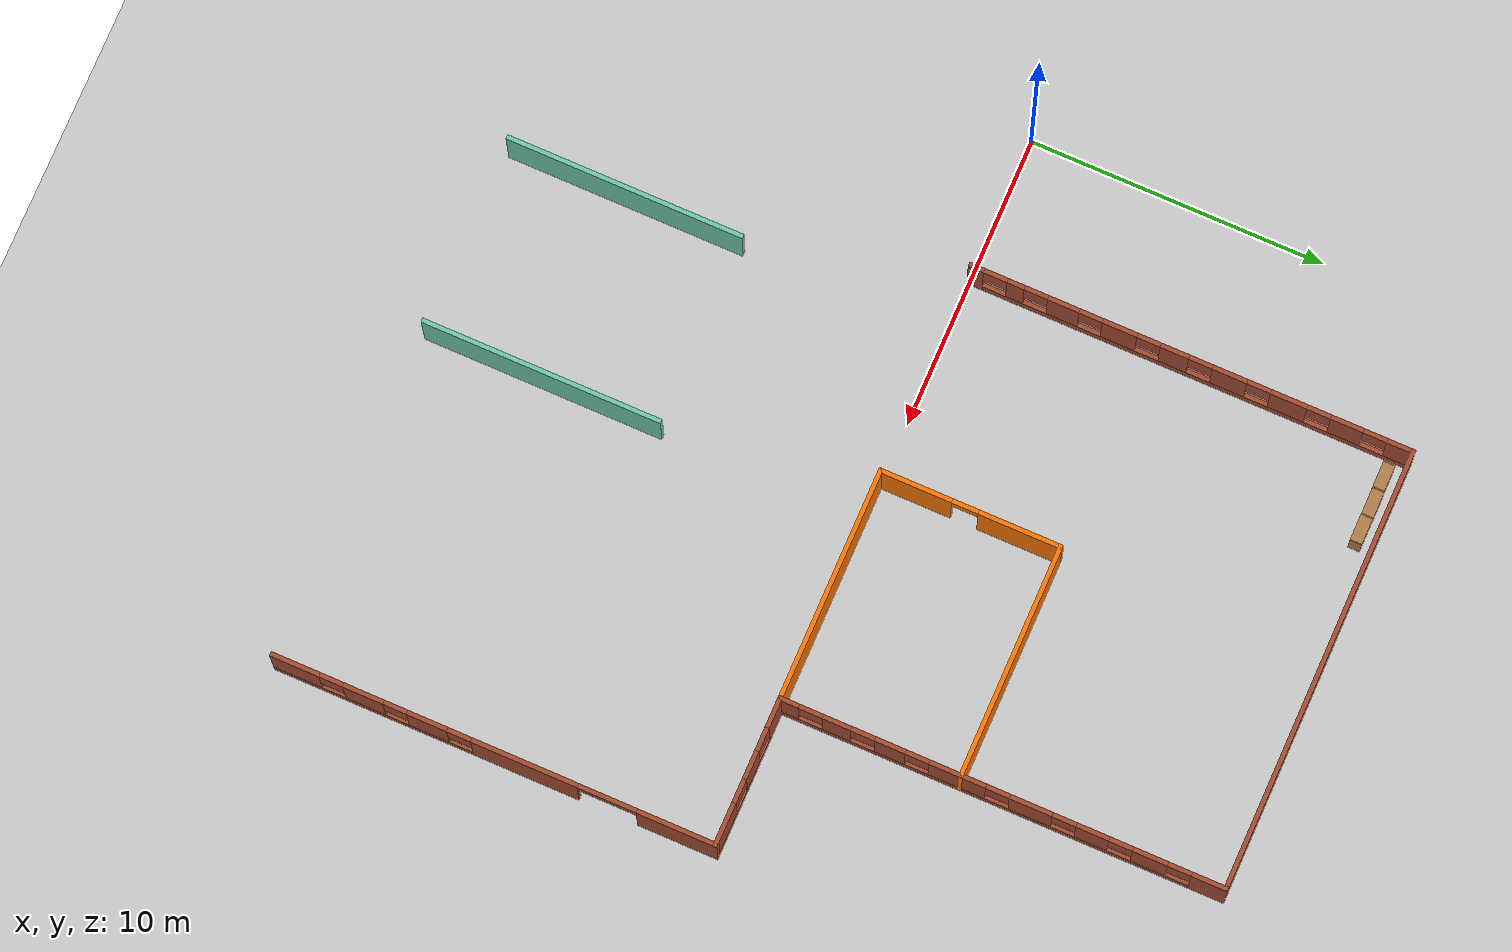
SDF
<sdf version="1.7">
 <world name="default">
  <model name="ground_plane">
   <static>1</static>
   <link name="link">
    <collision name="collision">
     <geometry><plane><normal>0 0 1</normal><size>100 100</size></plane></geometry>
     <surface><friction><ode><mu>100</mu><mu2>50</mu2></ode></friction></surface>
    </collision>
    <visual name="visual">
     <cast_shadows>0</cast_shadows>
     <geometry><plane><normal>0 0 1</normal><size>100 100</size></plane></geometry>
     <material>
      <script><uri>file://media/materials/scripts/gazebo.material</uri><name>Gazebo/Grey</name></script>
     </material>
    </visual>
   </link>
  </model>
  <model name="office">
   <link name="Wall_16">
    <pose>5 7.5 0 0 -0 1.5708</pose>
    <visual name="Wall_16_Visual_0">
     <pose>-7.31594 0 1.25 0 -0 0</pose>
     <geometry><box><size>0.518129 0.15 2.5</size></box></geometry>
     <material>
      <script><uri>file://media/materials/scripts/gazebo.material</uri><name>Gazebo/Bricks</name></script>
      <ambient>1 1 1 1</ambient>
     </material>
     <meta><layer>0</layer></meta>
    </visual>
    <collision name="Wall_16_Collision_0">
     <geometry><box><size>0.518129 0.15 2.5</size></box></geometry>
     <pose>-7.31594 0 1.25 0 -0 0</pose>
    </collision>
    <visual name="Wall_16_Visual_1">
     <pose>0.259064 0 0.25 0 -0 0</pose>
     <geometry><box><size>14.6319 0.15 0.5</size></box></geometry>
     <material>
      <script><uri>file://media/materials/scripts/gazebo.material</uri><name>Gazebo/Bricks</name></script>
      <ambient>1 1 1 1</ambient>
     </material>
     <meta><layer>0</layer></meta>
    </visual>
    <collision name="Wall_16_Collision_1">
     <geometry><box><size>14.6319 0.15 0.5</size></box></geometry>
     <pose>0.259064 0 0.25 0 -0 0</pose>
    </collision>
    <visual name="Wall_16_Visual_2">
     <pose>-5.96546 0 1.5 0 -0 0</pose>
     <geometry><box><size>0.582822 0.15 2</size></box></geometry>
     <material>
      <script><uri>file://media/materials/scripts/gazebo.material</uri><name>Gazebo/Bricks</name></script>
      <ambient>1 1 1 1</ambient>
     </material>
     <meta><layer>0</layer></meta>
    </visual>
    <collision name="Wall_16_Collision_2">
     <geometry><box><size>0.582822 0.15 2</size></box></geometry>
     <pose>-5.96546 0 1.5 0 -0 0</pose>
    </collision>
    <visual name="Wall_16_Visual_3">
     <pose>-4.34021 0 1.5 0 -0 0</pose>
     <geometry><box><size>1.06767 0.15 2</size></box></geometry>
     <material>
      <script><uri>file://media/materials/scripts/gazebo.material</uri><name>Gazebo/Bricks</name></script>
      <ambient>1 1 1 1</ambient>
     </material>
     <meta><layer>0</layer></meta>
    </visual>
    <collision name="Wall_16_Collision_3">
     <geometry><box><size>1.06767 0.15 2</size></box></geometry>
     <pose>-4.34021 0 1.5 0 -0 0</pose>
    </collision>
    <visual name="Wall_16_Visual_4">
     <pose>-2.42273 0 1.5 0 -0 0</pose>
     <geometry><box><size>1.16729 0.15 2</size></box></geometry>
     <material>
      <script><uri>file://media/materials/scripts/gazebo.material</uri><name>Gazebo/Bricks</name></script>
      <ambient>1 1 1 1</ambient>
     </material>
     <meta><layer>0</layer></meta>
    </visual>
    <collision name="Wall_16_Collision_4">
     <geometry><box><size>1.16729 0.15 2</size></box></geometry>
     <pose>-2.42273 0 1.5 0 -0 0</pose>
    </collision>
    <visual name="Wall_16_Visual_5">
     <pose>-0.557195 0 1.5 0 -0 0</pose>
     <geometry><box><size>0.963782 0.15 2</size></box></geometry>
     <material>
      <script><uri>file://media/materials/scripts/gazebo.material</uri><name>Gazebo/Bricks</name></script>
      <ambient>1 1 1 1</ambient>
     </material>
     <meta><layer>0</layer></meta>
    </visual>
    <collision name="Wall_16_Collision_5">
     <geometry><box><size>0.963782 0.15 2</size></box></geometry>
     <pose>-0.557195 0 1.5 0 -0 0</pose>
    </collision>
    <visual name="Wall_16_Visual_6">
     <pose>1.30834 0 1.5 0 -0 0</pose>
     <geometry><box><size>1.16729 0.15 2</size></box></geometry>
     <material>
      <script><uri>file://media/materials/scripts/gazebo.material</uri><name>Gazebo/Bricks</name></script>
      <ambient>1 1 1 1</ambient>
     </material>
     <meta><layer>0</layer></meta>
    </visual>
    <collision name="Wall_16_Collision_6">
     <geometry><box><size>1.16729 0.15 2</size></box></geometry>
     <pose>1.30834 0 1.5 0 -0 0</pose>
    </collision>
    <visual name="Wall_16_Visual_7">
     <pose>3.30956 0 1.5 0 -0 0</pose>
     <geometry><box><size>1.23513 0.15 2</size></box></geometry>
     <material>
      <script><uri>file://media/materials/scripts/gazebo.material</uri><name>Gazebo/Bricks</name></script>
      <ambient>1 1 1 1</ambient>
     </material>
     <meta><layer>0</layer></meta>
    </visual>
    <collision name="Wall_16_Collision_7">
     <geometry><box><size>1.23513 0.15 2</size></box></geometry>
     <pose>3.30956 0 1.5 0 -0 0</pose>
    </collision>
    <visual name="Wall_16_Visual_8">
     <pose>5.27685 0 1.5 0 -0 0</pose>
     <geometry><box><size>1.09946 0.15 2</size></box></geometry>
     <material>
      <script><uri>file://media/materials/scripts/gazebo.material</uri><name>Gazebo/Bricks</name></script>
      <ambient>1 1 1 1</ambient>
     </material>
     <meta><layer>0</layer></meta>
    </visual>
    <collision name="Wall_16_Collision_8">
     <geometry><box><size>1.09946 0.15 2</size></box></geometry>
     <pose>5.27685 0 1.5 0 -0 0</pose>
    </collision>
    <visual name="Wall_16_Visual_9">
     <pose>7.10079 0 1.5 0 -0 0</pose>
     <geometry><box><size>0.948419 0.15 2</size></box></geometry>
     <material>
      <script><uri>file://media/materials/scripts/gazebo.material</uri><name>Gazebo/Bricks</name></script>
      <ambient>1 1 1 1</ambient>
     </material>
     <meta><layer>0</layer></meta>
    </visual>
    <collision name="Wall_16_Collision_9">
     <geometry><box><size>0.948419 0.15 2</size></box></geometry>
     <pose>7.10079 0 1.5 0 -0 0</pose>
    </collision>
    <visual name="Wall_16_Visual_10">
     <pose>-6.65687 0 1.9 0 -0 0</pose>
     <geometry><box><size>0.8 0.15 1.2</size></box></geometry>
     <material>
      <script><uri>file://media/materials/scripts/gazebo.material</uri><name>Gazebo/Bricks</name></script>
      <ambient>1 1 1 1</ambient>
     </material>
     <meta><layer>0</layer></meta>
    </visual>
    <collision name="Wall_16_Collision_10">
     <geometry><box><size>0.8 0.15 1.2</size></box></geometry>
     <pose>-6.65687 0 1.9 0 -0 0</pose>
    </collision>
    <visual name="Wall_16_Visual_11">
     <pose>-5.27405 0 1.9 0 -0 0</pose>
     <geometry><box><size>0.8 0.15 1.2</size></box></geometry>
     <material>
      <script><uri>file://media/materials/scripts/gazebo.material</uri><name>Gazebo/Bricks</name></script>
      <ambient>1 1 1 1</ambient>
     </material>
     <meta><layer>0</layer></meta>
    </visual>
    <collision name="Wall_16_Collision_11">
     <geometry><box><size>0.8 0.15 1.2</size></box></geometry>
     <pose>-5.27405 0 1.9 0 -0 0</pose>
    </collision>
    <visual name="Wall_16_Visual_12">
     <pose>-3.40638 0 1.9 0 -0 0</pose>
     <geometry><box><size>0.8 0.15 1.2</size></box></geometry>
     <material>
      <script><uri>file://media/materials/scripts/gazebo.material</uri><name>Gazebo/Bricks</name></script>
      <ambient>1 1 1 1</ambient>
     </material>
     <meta><layer>0</layer></meta>
    </visual>
    <collision name="Wall_16_Collision_12">
     <geometry><box><size>0.8 0.15 1.2</size></box></geometry>
     <pose>-3.40638 0 1.9 0 -0 0</pose>
    </collision>
    <visual name="Wall_16_Visual_13">
     <pose>-1.43908 0 1.9 0 -0 0</pose>
     <geometry><box><size>0.8 0.15 1.2</size></box></geometry>
     <material>
      <script><uri>file://media/materials/scripts/gazebo.material</uri><name>Gazebo/Bricks</name></script>
      <ambient>1 1 1 1</ambient>
     </material>
     <meta><layer>0</layer></meta>
    </visual>
    <collision name="Wall_16_Collision_13">
     <geometry><box><size>0.8 0.15 1.2</size></box></geometry>
     <pose>-1.43908 0 1.9 0 -0 0</pose>
    </collision>
    <visual name="Wall_16_Visual_14">
     <pose>0.324696 0 1.9 0 -0 0</pose>
     <geometry><box><size>0.8 0.15 1.2</size></box></geometry>
     <material>
      <script><uri>file://media/materials/scripts/gazebo.material</uri><name>Gazebo/Bricks</name></script>
      <ambient>1 1 1 1</ambient>
     </material>
     <meta><layer>0</layer></meta>
    </visual>
    <collision name="Wall_16_Collision_14">
     <geometry><box><size>0.8 0.15 1.2</size></box></geometry>
     <pose>0.324696 0 1.9 0 -0 0</pose>
    </collision>
    <visual name="Wall_16_Visual_15">
     <pose>2.29199 0 1.9 0 -0 0</pose>
     <geometry><box><size>0.8 0.15 1.2</size></box></geometry>
     <material>
      <script><uri>file://media/materials/scripts/gazebo.material</uri><name>Gazebo/Bricks</name></script>
      <ambient>1 1 1 1</ambient>
     </material>
     <meta><layer>0</layer></meta>
    </visual>
    <collision name="Wall_16_Collision_15">
     <geometry><box><size>0.8 0.15 1.2</size></box></geometry>
     <pose>2.29199 0 1.9 0 -0 0</pose>
    </collision>
    <visual name="Wall_16_Visual_16">
     <pose>4.32712 0 1.9 0 -0 0</pose>
     <geometry><box><size>0.8 0.15 1.2</size></box></geometry>
     <material>
      <script><uri>file://media/materials/scripts/gazebo.material</uri><name>Gazebo/Bricks</name></script>
      <ambient>1 1 1 1</ambient>
     </material>
     <meta><layer>0</layer></meta>
    </visual>
    <collision name="Wall_16_Collision_16">
     <geometry><box><size>0.8 0.15 1.2</size></box></geometry>
     <pose>4.32712 0 1.9 0 -0 0</pose>
    </collision>
    <visual name="Wall_16_Visual_17">
     <pose>6.22658 0 1.9 0 -0 0</pose>
     <geometry><box><size>0.8 0.15 1.2</size></box></geometry>
     <material>
      <script><uri>file://media/materials/scripts/gazebo.material</uri><name>Gazebo/Bricks</name></script>
      <ambient>1 1 1 1</ambient>
     </material>
     <meta><layer>0</layer></meta>
    </visual>
    <collision name="Wall_16_Collision_17">
     <geometry><box><size>0.8 0.15 1.2</size></box></geometry>
     <pose>6.22658 0 1.9 0 -0 0</pose>
    </collision>
   </link>
   <link name="Wall_20">
    <collision name="Wall_20_Collision">
     <geometry><box><size>15.15 0.15 2.5</size></box></geometry>
     <pose>0 0 1.25 0 -0 0</pose>
    </collision>
    <visual name="Wall_20_Visual">
     <pose>0 0 1.25 0 -0 0</pose>
     <geometry><box><size>15.15 0.15 2.5</size></box></geometry>
     <material>
      <script><uri>file://media/materials/scripts/gazebo.material</uri><name>Gazebo/Bricks</name></script>
      <ambient>1 1 1 1</ambient>
     </material>
     <meta><layer>0</layer></meta>
    </visual>
    <pose>12.5 15 0 0 -0 0</pose>
   </link>
   <link name="Wall_22">
    <pose>20 7.5 0 0 -0 -1.5708</pose>
    <visual name="Wall_22_Visual_0">
     <pose>-6.96511 0 1.25 0 -0 0</pose>
     <geometry><box><size>1.21977 0.15 2.5</size></box></geometry>
     <material>
      <script><uri>file://media/materials/scripts/gazebo.material</uri><name>Gazebo/Bricks</name></script>
      <ambient>1 1 1 1</ambient>
     </material>
     <meta><layer>0</layer></meta>
    </visual>
    <collision name="Wall_22_Collision_0">
     <geometry><box><size>1.21977 0.15 2.5</size></box></geometry>
     <pose>-6.96511 0 1.25 0 -0 0</pose>
    </collision>
    <visual name="Wall_22_Visual_1">
     <pose>0.609885 0 0.25 0 -0 0</pose>
     <geometry><box><size>13.9302 0.15 0.5</size></box></geometry>
     <material>
      <script><uri>file://media/materials/scripts/gazebo.material</uri><name>Gazebo/Bricks</name></script>
      <ambient>1 1 1 1</ambient>
     </material>
     <meta><layer>0</layer></meta>
    </visual>
    <collision name="Wall_22_Collision_1">
     <geometry><box><size>13.9302 0.15 0.5</size></box></geometry>
     <pose>0.609885 0 0.25 0 -0 0</pose>
    </collision>
    <visual name="Wall_22_Visual_2">
     <pose>-4.97158 0 1.5 0 -0 0</pose>
     <geometry><box><size>1.16729 0.15 2</size></box></geometry>
     <material>
      <script><uri>file://media/materials/scripts/gazebo.material</uri><name>Gazebo/Bricks</name></script>
      <ambient>1 1 1 1</ambient>
     </material>
     <meta><layer>0</layer></meta>
    </visual>
    <collision name="Wall_22_Collision_2">
     <geometry><box><size>1.16729 0.15 2</size></box></geometry>
     <pose>-4.97158 0 1.5 0 -0 0</pose>
    </collision>
    <visual name="Wall_22_Visual_3">
     <pose>-3.03821 0 1.5 0 -0 0</pose>
     <geometry><box><size>1.09946 0.15 2</size></box></geometry>
     <material>
      <script><uri>file://media/materials/scripts/gazebo.material</uri><name>Gazebo/Bricks</name></script>
      <ambient>1 1 1 1</ambient>
     </material>
     <meta><layer>0</layer></meta>
    </visual>
    <collision name="Wall_22_Collision_3">
     <geometry><box><size>1.09946 0.15 2</size></box></geometry>
     <pose>-3.03821 0 1.5 0 -0 0</pose>
    </collision>
    <visual name="Wall_22_Visual_4">
     <pose>-0.969155 0 1.5 0 -0 0</pose>
     <geometry><box><size>1.43865 0.15 2</size></box></geometry>
     <material>
      <script><uri>file://media/materials/scripts/gazebo.material</uri><name>Gazebo/Bricks</name></script>
      <ambient>1 1 1 1</ambient>
     </material>
     <meta><layer>0</layer></meta>
    </visual>
    <collision name="Wall_22_Collision_4">
     <geometry><box><size>1.43865 0.15 2</size></box></geometry>
     <pose>-0.969155 0 1.5 0 -0 0</pose>
    </collision>
    <visual name="Wall_22_Visual_5">
     <pose>1.50692 0 1.5 0 -0 0</pose>
     <geometry><box><size>1.91351 0.15 2</size></box></geometry>
     <material>
      <script><uri>file://media/materials/scripts/gazebo.material</uri><name>Gazebo/Bricks</name></script>
      <ambient>1 1 1 1</ambient>
     </material>
     <meta><layer>0</layer></meta>
    </visual>
    <collision name="Wall_22_Collision_5">
     <geometry><box><size>1.91351 0.15 2</size></box></geometry>
     <pose>1.50692 0 1.5 0 -0 0</pose>
    </collision>
    <visual name="Wall_22_Visual_6">
     <pose>3.77949 0 1.5 0 -0 0</pose>
     <geometry><box><size>1.03162 0.15 2</size></box></geometry>
     <material>
      <script><uri>file://media/materials/scripts/gazebo.material</uri><name>Gazebo/Bricks</name></script>
      <ambient>1 1 1 1</ambient>
     </material>
     <meta><layer>0</layer></meta>
    </visual>
    <collision name="Wall_22_Collision_6">
     <geometry><box><size>1.03162 0.15 2</size></box></geometry>
     <pose>3.77949 0 1.5 0 -0 0</pose>
    </collision>
    <visual name="Wall_22_Visual_7">
     <pose>5.57719 0 1.5 0 -0 0</pose>
     <geometry><box><size>0.963782 0.15 2</size></box></geometry>
     <material>
      <script><uri>file://media/materials/scripts/gazebo.material</uri><name>Gazebo/Bricks</name></script>
      <ambient>1 1 1 1</ambient>
     </material>
     <meta><layer>0</layer></meta>
    </visual>
    <collision name="Wall_22_Collision_7">
     <geometry><box><size>0.963782 0.15 2</size></box></geometry>
     <pose>5.57719 0 1.5 0 -0 0</pose>
    </collision>
    <visual name="Wall_22_Visual_8">
     <pose>7.21704 0 1.5 0 -0 0</pose>
     <geometry><box><size>0.71592 0.15 2</size></box></geometry>
     <material>
      <script><uri>file://media/materials/scripts/gazebo.material</uri><name>Gazebo/Bricks</name></script>
      <ambient>1 1 1 1</ambient>
     </material>
     <meta><layer>0</layer></meta>
    </visual>
    <collision name="Wall_22_Collision_8">
     <geometry><box><size>0.71592 0.15 2</size></box></geometry>
     <pose>7.21704 0 1.5 0 -0 0</pose>
    </collision>
    <visual name="Wall_22_Visual_9">
     <pose>-5.95523 0 1.9 0 -0 0</pose>
     <geometry><box><size>0.8 0.15 1.2</size></box></geometry>
     <material>
      <script><uri>file://media/materials/scripts/gazebo.material</uri><name>Gazebo/Bricks</name></script>
      <ambient>1 1 1 1</ambient>
     </material>
     <meta><layer>0</layer></meta>
    </visual>
    <collision name="Wall_22_Collision_9">
     <geometry><box><size>0.8 0.15 1.2</size></box></geometry>
     <pose>-5.95523 0 1.9 0 -0 0</pose>
    </collision>
    <visual name="Wall_22_Visual_10">
     <pose>-3.98793 0 1.9 0 -0 0</pose>
     <geometry><box><size>0.8 0.15 1.2</size></box></geometry>
     <material>
      <script><uri>file://media/materials/scripts/gazebo.material</uri><name>Gazebo/Bricks</name></script>
      <ambient>1 1 1 1</ambient>
     </material>
     <meta><layer>0</layer></meta>
    </visual>
    <collision name="Wall_22_Collision_10">
     <geometry><box><size>0.8 0.15 1.2</size></box></geometry>
     <pose>-3.98793 0 1.9 0 -0 0</pose>
    </collision>
    <visual name="Wall_22_Visual_11">
     <pose>-2.08848 0 1.9 0 -0 0</pose>
     <geometry><box><size>0.8 0.15 1.2</size></box></geometry>
     <material>
      <script><uri>file://media/materials/scripts/gazebo.material</uri><name>Gazebo/Bricks</name></script>
      <ambient>1 1 1 1</ambient>
     </material>
     <meta><layer>0</layer></meta>
    </visual>
    <collision name="Wall_22_Collision_11">
     <geometry><box><size>0.8 0.15 1.2</size></box></geometry>
     <pose>-2.08848 0 1.9 0 -0 0</pose>
    </collision>
    <visual name="Wall_22_Visual_12">
     <pose>0.150168 0 1.9 0 -0 0</pose>
     <geometry><box><size>0.8 0.15 1.2</size></box></geometry>
     <material>
      <script><uri>file://media/materials/scripts/gazebo.material</uri><name>Gazebo/Bricks</name></script>
      <ambient>1 1 1 1</ambient>
     </material>
     <meta><layer>0</layer></meta>
    </visual>
    <collision name="Wall_22_Collision_12">
     <geometry><box><size>0.8 0.15 1.2</size></box></geometry>
     <pose>0.150168 0 1.9 0 -0 0</pose>
    </collision>
    <visual name="Wall_22_Visual_13">
     <pose>2.86368 0 1.9 0 -0 0</pose>
     <geometry><box><size>0.8 0.15 1.2</size></box></geometry>
     <material>
      <script><uri>file://media/materials/scripts/gazebo.material</uri><name>Gazebo/Bricks</name></script>
      <ambient>1 1 1 1</ambient>
     </material>
     <meta><layer>0</layer></meta>
    </visual>
    <collision name="Wall_22_Collision_13">
     <geometry><box><size>0.8 0.15 1.2</size></box></geometry>
     <pose>2.86368 0 1.9 0 -0 0</pose>
    </collision>
    <visual name="Wall_22_Visual_14">
     <pose>4.6953 0 1.9 0 -0 0</pose>
     <geometry><box><size>0.8 0.15 1.2</size></box></geometry>
     <material>
      <script><uri>file://media/materials/scripts/gazebo.material</uri><name>Gazebo/Bricks</name></script>
      <ambient>1 1 1 1</ambient>
     </material>
     <meta><layer>0</layer></meta>
    </visual>
    <collision name="Wall_22_Collision_14">
     <geometry><box><size>0.8 0.15 1.2</size></box></geometry>
     <pose>4.6953 0 1.9 0 -0 0</pose>
    </collision>
    <visual name="Wall_22_Visual_15">
     <pose>6.45908 0 1.9 0 -0 0</pose>
     <geometry><box><size>0.8 0.15 1.2</size></box></geometry>
     <material>
      <script><uri>file://media/materials/scripts/gazebo.material</uri><name>Gazebo/Bricks</name></script>
      <ambient>1 1 1 1</ambient>
     </material>
     <meta><layer>0</layer></meta>
    </visual>
    <collision name="Wall_22_Collision_15">
     <geometry><box><size>0.8 0.15 1.2</size></box></geometry>
     <pose>6.45908 0 1.9 0 -0 0</pose>
    </collision>
   </link>
   <link name="Wall_24">
    <pose>22.5 0 0 0 -0 0</pose>
    <visual name="Wall_24_Visual_0">
     <pose>-2.03488 0 1.25 0 -0 0</pose>
     <geometry><box><size>1.08023 0.15 2.5</size></box></geometry>
     <material>
      <script><uri>file://media/materials/scripts/gazebo.material</uri><name>Gazebo/Bricks</name></script>
      <ambient>1 1 1 1</ambient>
     </material>
     <meta><layer>0</layer></meta>
    </visual>
    <collision name="Wall_24_Collision_0">
     <geometry><box><size>1.08023 0.15 2.5</size></box></geometry>
     <pose>-2.03488 0 1.25 0 -0 0</pose>
    </collision>
    <visual name="Wall_24_Visual_1">
     <pose>0.540116 0 0.25 0 -0 0</pose>
     <geometry><box><size>4.06977 0.15 0.5</size></box></geometry>
     <material>
      <script><uri>file://media/materials/scripts/gazebo.material</uri><name>Gazebo/Bricks</name></script>
      <ambient>1 1 1 1</ambient>
     </material>
     <meta><layer>0</layer></meta>
    </visual>
    <collision name="Wall_24_Collision_1">
     <geometry><box><size>4.06977 0.15 0.5</size></box></geometry>
     <pose>0.540116 0 0.25 0 -0 0</pose>
    </collision>
    <visual name="Wall_24_Visual_2">
     <pose>-0.212877 0 1.5 0 -0 0</pose>
     <geometry><box><size>0.963783 0.15 2</size></box></geometry>
     <material>
      <script><uri>file://media/materials/scripts/gazebo.material</uri><name>Gazebo/Bricks</name></script>
      <ambient>1 1 1 1</ambient>
     </material>
     <meta><layer>0</layer></meta>
    </visual>
    <collision name="Wall_24_Collision_2">
     <geometry><box><size>0.963783 0.15 2</size></box></geometry>
     <pose>-0.212877 0 1.5 0 -0 0</pose>
    </collision>
    <visual name="Wall_24_Visual_3">
     <pose>1.82201 0 1.5 0 -0 0</pose>
     <geometry><box><size>1.50599 0.15 2</size></box></geometry>
     <material>
      <script><uri>file://media/materials/scripts/gazebo.material</uri><name>Gazebo/Bricks</name></script>
      <ambient>1 1 1 1</ambient>
     </material>
     <meta><layer>0</layer></meta>
    </visual>
    <collision name="Wall_24_Collision_3">
     <geometry><box><size>1.50599 0.15 2</size></box></geometry>
     <pose>1.82201 0 1.5 0 -0 0</pose>
    </collision>
    <visual name="Wall_24_Visual_4">
     <pose>-1.09477 0 1.9 0 -0 0</pose>
     <geometry><box><size>0.8 0.15 1.2</size></box></geometry>
     <material>
      <script><uri>file://media/materials/scripts/gazebo.material</uri><name>Gazebo/Bricks</name></script>
      <ambient>1 1 1 1</ambient>
     </material>
     <meta><layer>0</layer></meta>
    </visual>
    <collision name="Wall_24_Collision_4">
     <geometry><box><size>0.8 0.15 1.2</size></box></geometry>
     <pose>-1.09477 0 1.9 0 -0 0</pose>
    </collision>
    <visual name="Wall_24_Visual_5">
     <pose>0.669014 0 1.9 0 -0 0</pose>
     <geometry><box><size>0.8 0.15 1.2</size></box></geometry>
     <material>
      <script><uri>file://media/materials/scripts/gazebo.material</uri><name>Gazebo/Bricks</name></script>
      <ambient>1 1 1 1</ambient>
     </material>
     <meta><layer>0</layer></meta>
    </visual>
    <collision name="Wall_24_Collision_5">
     <geometry><box><size>0.8 0.15 1.2</size></box></geometry>
     <pose>0.669014 0 1.9 0 -0 0</pose>
    </collision>
   </link>
   <link name="Wall_26">
    <pose>25 -7.5 0 0 -0 -1.5708</pose>
    <visual name="Wall_26_Visual_0">
     <pose>-6.2111 0 1.25 0 -0 0</pose>
     <geometry><box><size>2.72781 0.15 2.5</size></box></geometry>
     <material>
      <script><uri>file://media/materials/scripts/gazebo.material</uri><name>Gazebo/Bricks</name></script>
      <ambient>1 1 1 1</ambient>
     </material>
     <meta><layer>0</layer></meta>
    </visual>
    <collision name="Wall_26_Collision_0">
     <geometry><box><size>2.72781 0.15 2.5</size></box></geometry>
     <pose>-6.2111 0 1.25 0 -0 0</pose>
    </collision>
    <visual name="Wall_26_Visual_1">
     <pose>-1.04366 0 1.25 0 -0 0</pose>
     <geometry><box><size>3.60707 0.15 2.5</size></box></geometry>
     <material>
      <script><uri>file://media/materials/scripts/gazebo.material</uri><name>Gazebo/Bricks</name></script>
      <ambient>1 1 1 1</ambient>
     </material>
     <meta><layer>0</layer></meta>
    </visual>
    <collision name="Wall_26_Collision_1">
     <geometry><box><size>3.60707 0.15 2.5</size></box></geometry>
     <pose>-1.04366 0 1.25 0 -0 0</pose>
    </collision>
    <visual name="Wall_26_Visual_2">
     <pose>4.16744 0 0.25 0 -0 0</pose>
     <geometry><box><size>6.81512 0.15 0.5</size></box></geometry>
     <material>
      <script><uri>file://media/materials/scripts/gazebo.material</uri><name>Gazebo/Bricks</name></script>
      <ambient>1 1 1 1</ambient>
     </material>
     <meta><layer>0</layer></meta>
    </visual>
    <collision name="Wall_26_Collision_2">
     <geometry><box><size>6.81512 0.15 0.5</size></box></geometry>
     <pose>4.16744 0 0.25 0 -0 0</pose>
    </collision>
    <visual name="Wall_26_Visual_3">
     <pose>2.24528 0 1.5 0 -0 0</pose>
     <geometry><box><size>1.37081 0.15 2</size></box></geometry>
     <material>
      <script><uri>file://media/materials/scripts/gazebo.material</uri><name>Gazebo/Bricks</name></script>
      <ambient>1 1 1 1</ambient>
     </material>
     <meta><layer>0</layer></meta>
    </visual>
    <collision name="Wall_26_Collision_3">
     <geometry><box><size>1.37081 0.15 2</size></box></geometry>
     <pose>2.24528 0 1.5 0 -0 0</pose>
    </collision>
    <visual name="Wall_26_Visual_4">
     <pose>4.41609 0 1.5 0 -0 0</pose>
     <geometry><box><size>1.37081 0.15 2</size></box></geometry>
     <material>
      <script><uri>file://media/materials/scripts/gazebo.material</uri><name>Gazebo/Bricks</name></script>
      <ambient>1 1 1 1</ambient>
     </material>
     <meta><layer>0</layer></meta>
    </visual>
    <collision name="Wall_26_Collision_4">
     <geometry><box><size>1.37081 0.15 2</size></box></geometry>
     <pose>4.41609 0 1.5 0 -0 0</pose>
    </collision>
    <visual name="Wall_26_Visual_5">
     <pose>6.73825 0 1.5 0 -0 0</pose>
     <geometry><box><size>1.67351 0.15 2</size></box></geometry>
     <material>
      <script><uri>file://media/materials/scripts/gazebo.material</uri><name>Gazebo/Bricks</name></script>
      <ambient>1 1 1 1</ambient>
     </material>
     <meta><layer>0</layer></meta>
    </visual>
    <collision name="Wall_26_Collision_5">
     <geometry><box><size>1.67351 0.15 2</size></box></geometry>
     <pose>6.73825 0 1.5 0 -0 0</pose>
    </collision>
    <visual name="Wall_26_Visual_6">
     <pose>1.15988 0 1.9 0 -0 0</pose>
     <geometry><box><size>0.8 0.15 1.2</size></box></geometry>
     <material>
      <script><uri>file://media/materials/scripts/gazebo.material</uri><name>Gazebo/Bricks</name></script>
      <ambient>1 1 1 1</ambient>
     </material>
     <meta><layer>0</layer></meta>
    </visual>
    <collision name="Wall_26_Collision_6">
     <geometry><box><size>0.8 0.15 1.2</size></box></geometry>
     <pose>1.15988 0 1.9 0 -0 0</pose>
    </collision>
    <visual name="Wall_26_Visual_7">
     <pose>3.33069 0 1.9 0 -0 0</pose>
     <geometry><box><size>0.8 0.15 1.2</size></box></geometry>
     <material>
      <script><uri>file://media/materials/scripts/gazebo.material</uri><name>Gazebo/Bricks</name></script>
      <ambient>1 1 1 1</ambient>
     </material>
     <meta><layer>0</layer></meta>
    </visual>
    <collision name="Wall_26_Collision_7">
     <geometry><box><size>0.8 0.15 1.2</size></box></geometry>
     <pose>3.33069 0 1.9 0 -0 0</pose>
    </collision>
    <visual name="Wall_26_Visual_8">
     <pose>5.5015 0 1.9 0 -0 0</pose>
     <geometry><box><size>0.8 0.15 1.2</size></box></geometry>
     <material>
      <script><uri>file://media/materials/scripts/gazebo.material</uri><name>Gazebo/Bricks</name></script>
      <ambient>1 1 1 1</ambient>
     </material>
     <meta><layer>0</layer></meta>
    </visual>
    <collision name="Wall_26_Collision_8">
     <geometry><box><size>0.8 0.15 1.2</size></box></geometry>
     <pose>5.5015 0 1.9 0 -0 0</pose>
    </collision>
    <visual name="Wall_26_Visual_9">
     <pose>-3.84719 0 2.25 0 -0 0</pose>
     <geometry><box><size>2 0.15 0.5</size></box></geometry>
     <material>
      <script><uri>file://media/materials/scripts/gazebo.material</uri><name>Gazebo/Bricks</name></script>
      <ambient>1 1 1 1</ambient>
     </material>
     <meta><layer>0</layer></meta>
    </visual>
    <collision name="Wall_26_Collision_9">
     <geometry><box><size>2 0.15 0.5</size></box></geometry>
     <pose>-3.84719 0 2.25 0 -0 0</pose>
    </collision>
   </link>
   <link name="Wall_43">
    <collision name="Wall_43_Collision">
     <geometry><box><size>8.105 0.15 2.5</size></box></geometry>
     <pose>0 0 1.25 0 -0 0</pose>
    </collision>
    <visual name="Wall_43_Visual">
     <pose>0 0 1.25 0 -0 0</pose>
     <geometry><box><size>8.105 0.15 2.5</size></box></geometry>
     <material>
      <script><uri>file://media/materials/scripts/gazebo.material</uri><name>Gazebo/Grey</name></script>
      <ambient>0.435294 0.796078 0.67451 1</ambient>
     </material>
     <meta><layer>0</layer></meta>
    </visual>
    <pose>7 -10.9775 0 0 -0 -1.5708</pose>
   </link>
   <link name="Wall_45">
    <collision name="Wall_45_Collision">
     <geometry><box><size>8.177 0.15 2.5</size></box></geometry>
     <pose>0 0 1.25 0 -0 0</pose>
    </collision>
    <visual name="Wall_45_Visual">
     <pose>0 0 1.25 0 -0 0</pose>
     <geometry><box><size>8.177 0.15 2.5</size></box></geometry>
     <material>
      <script><uri>file://media/materials/scripts/gazebo.material</uri><name>Gazebo/Grey</name></script>
      <ambient>0.435294 0.796078 0.67451 1</ambient>
     </material>
     <meta><layer>0</layer></meta>
    </visual>
    <pose>13.448 -10.9865 0 0 -0 -1.5708</pose>
   </link>
   <link name="Wall_47">
    <collision name="Wall_47_Collision">
     <geometry><box><size>8 0.15 2.5</size></box></geometry>
     <pose>0 0 1.25 0 -0 0</pose>
    </collision>
    <visual name="Wall_47_Visual">
     <pose>0 0 1.25 0 -0 0</pose>
     <geometry><box><size>8 0.15 2.5</size></box></geometry>
     <material>
      <script><uri>file://media/materials/scripts/gazebo.material</uri><name>Gazebo/Grey</name></script>
      <ambient>0.996078 0.47451 0.0196078 1</ambient>
     </material>
     <meta><layer>0</layer></meta>
    </visual>
    <pose>16.075 0 0 0 -0 3.14159</pose>
   </link>
   <link name="Wall_48">
    <pose>12.15 3.05 0 0 -0 1.5708</pose>
    <visual name="Wall_48_Visual_0">
     <pose>-1.87357 0 1.25 0 -0 0</pose>
     <geometry><box><size>2.50285 0.15 2.5</size></box></geometry>
     <material>
      <script><uri>file://media/materials/scripts/gazebo.material</uri><name>Gazebo/Grey</name></script>
      <ambient>0.996078 0.47451 0.0196078 1</ambient>
     </material>
     <meta><layer>0</layer></meta>
    </visual>
    <collision name="Wall_48_Collision_0">
     <geometry><box><size>2.50285 0.15 2.5</size></box></geometry>
     <pose>-1.87357 0 1.25 0 -0 0</pose>
    </collision>
    <visual name="Wall_48_Visual_1">
     <pose>1.70143 0 1.25 0 -0 0</pose>
     <geometry><box><size>2.84715 0.15 2.5</size></box></geometry>
     <material>
      <script><uri>file://media/materials/scripts/gazebo.material</uri><name>Gazebo/Grey</name></script>
      <ambient>0.996078 0.47451 0.0196078 1</ambient>
     </material>
     <meta><layer>0</layer></meta>
    </visual>
    <collision name="Wall_48_Collision_1">
     <geometry><box><size>2.84715 0.15 2.5</size></box></geometry>
     <pose>1.70143 0 1.25 0 -0 0</pose>
    </collision>
    <visual name="Wall_48_Visual_2">
     <pose>-0.172147 0 2.25 0 -0 0</pose>
     <geometry><box><size>0.9 0.15 0.5</size></box></geometry>
     <material>
      <script><uri>file://media/materials/scripts/gazebo.material</uri><name>Gazebo/Grey</name></script>
      <ambient>0.996078 0.47451 0.0196078 1</ambient>
     </material>
     <meta><layer>0</layer></meta>
    </visual>
    <collision name="Wall_48_Collision_2">
     <geometry><box><size>0.9 0.15 0.5</size></box></geometry>
     <pose>-0.172147 0 2.25 0 -0 0</pose>
    </collision>
   </link>
   <link name="Wall_49">
    <collision name="Wall_49_Collision">
     <geometry><box><size>8 0.15 2.5</size></box></geometry>
     <pose>0 0 1.25 0 -0 0</pose>
    </collision>
    <visual name="Wall_49_Visual">
     <pose>0 0 1.25 0 -0 0</pose>
     <geometry><box><size>8 0.15 2.5</size></box></geometry>
     <material>
      <script><uri>file://media/materials/scripts/gazebo.material</uri><name>Gazebo/Grey</name></script>
      <ambient>0.996078 0.47451 0.0196078 1</ambient>
     </material>
     <meta><layer>0</layer></meta>
    </visual>
    <pose>16.075 6.1 0 0 -0 0</pose>
   </link>
   <static>1</static>
  </model>
  <model name="bookshelf_clone_0">
   <static>1</static>
   <link name="link">
    <inertial><mass>1</mass></inertial>
    <collision name="back">
     <pose>0 0.005 0.6 0 -0 0</pose>
     <geometry><box><size>0.9 0.01 1.2</size></box></geometry>
    </collision>
    <visual name="visual1">
     <pose>0 0.005 0.6 0 -0 0</pose>
     <geometry><box><size>0.9 0.01 1.2</size></box></geometry>
     <material>
      <script><uri>file://media/materials/scripts/gazebo.material</uri><name>Gazebo/Wood</name></script>
     </material>
    </visual>
    <collision name="left_side">
     <pose>0.45 -0.195 0.6 0 -0 0</pose>
     <geometry><box><size>0.02 0.4 1.2</size></box></geometry>
    </collision>
    <visual name="visual2">
     <pose>0.45 -0.195 0.6 0 -0 0</pose>
     <geometry><box><size>0.02 0.4 1.2</size></box></geometry>
     <material>
      <script><uri>file://media/materials/scripts/gazebo.material</uri><name>Gazebo/Wood</name></script>
     </material>
    </visual>
    <collision name="right_side">
     <pose>-0.45 -0.195 0.6 0 -0 0</pose>
     <geometry><box><size>0.02 0.4 1.2</size></box></geometry>
    </collision>
    <visual name="visual3">
     <pose>-0.45 -0.195 0.6 0 -0 0</pose>
     <geometry><box><size>0.02 0.4 1.2</size></box></geometry>
     <material>
      <script><uri>file://media/materials/scripts/gazebo.material</uri><name>Gazebo/Wood</name></script>
     </material>
    </visual>
    <collision name="bottom">
     <pose>0 -0.195 0.03 0 -0 0</pose>
     <geometry><box><size>0.88 0.4 0.06</size></box></geometry>
    </collision>
    <visual name="visual4">
     <pose>0 -0.195 0.03 0 -0 0</pose>
     <geometry><box><size>0.88 0.4 0.06</size></box></geometry>
     <material>
      <script><uri>file://media/materials/scripts/gazebo.material</uri><name>Gazebo/Wood</name></script>
     </material>
    </visual>
    <collision name="top">
     <pose>0 -0.195 1.19 0 -0 0</pose>
     <geometry><box><size>0.88 0.4 0.02</size></box></geometry>
    </collision>
    <visual name="visual5">
     <pose>0 -0.195 1.19 0 -0 0</pose>
     <geometry><box><size>0.88 0.4 0.02</size></box></geometry>
     <material>
      <script><uri>file://media/materials/scripts/gazebo.material</uri><name>Gazebo/Wood</name></script>
     </material>
    </visual>
    <collision name="low_shelf">
     <pose>0 -0.195 0.43 0 -0 0</pose>
     <geometry><box><size>0.88 0.4 0.02</size></box></geometry>
    </collision>
    <visual name="visual6">
     <pose>0 -0.195 0.43 0 -0 0</pose>
     <geometry><box><size>0.88 0.4 0.02</size></box></geometry>
     <material>
      <script><uri>file://media/materials/scripts/gazebo.material</uri><name>Gazebo/Wood</name></script>
     </material>
    </visual>
    <collision name="high_shelf">
     <pose>0 -0.195 0.8 0 -0 0</pose>
     <geometry><box><size>0.88 0.4 0.02</size></box></geometry>
    </collision>
    <visual name="visual7">
     <pose>0 -0.195 0.8 0 -0 0</pose>
     <geometry><box><size>0.88 0.4 0.02</size></box></geometry>
     <material>
      <script><uri>file://media/materials/scripts/gazebo.material</uri><name>Gazebo/Wood</name></script>
     </material>
    </visual>
   </link>
   <pose>5.80678 14.6368 0 0 -0 0</pose>
  </model>
  <model name="bookshelf_clone_1">
   <static>1</static>
   <link name="link">
    <inertial><mass>1</mass></inertial>
    <collision name="back">
     <pose>0 0.005 0.6 0 -0 0</pose>
     <geometry><box><size>0.9 0.01 1.2</size></box></geometry>
    </collision>
    <visual name="visual1">
     <pose>0 0.005 0.6 0 -0 0</pose>
     <geometry><box><size>0.9 0.01 1.2</size></box></geometry>
     <material>
      <script><uri>file://media/materials/scripts/gazebo.material</uri><name>Gazebo/Wood</name></script>
     </material>
    </visual>
    <collision name="left_side">
     <pose>0.45 -0.195 0.6 0 -0 0</pose>
     <geometry><box><size>0.02 0.4 1.2</size></box></geometry>
    </collision>
    <visual name="visual2">
     <pose>0.45 -0.195 0.6 0 -0 0</pose>
     <geometry><box><size>0.02 0.4 1.2</size></box></geometry>
     <material>
      <script><uri>file://media/materials/scripts/gazebo.material</uri><name>Gazebo/Wood</name></script>
     </material>
    </visual>
    <collision name="right_side">
     <pose>-0.45 -0.195 0.6 0 -0 0</pose>
     <geometry><box><size>0.02 0.4 1.2</size></box></geometry>
    </collision>
    <visual name="visual3">
     <pose>-0.45 -0.195 0.6 0 -0 0</pose>
     <geometry><box><size>0.02 0.4 1.2</size></box></geometry>
     <material>
      <script><uri>file://media/materials/scripts/gazebo.material</uri><name>Gazebo/Wood</name></script>
     </material>
    </visual>
    <collision name="bottom">
     <pose>0 -0.195 0.03 0 -0 0</pose>
     <geometry><box><size>0.88 0.4 0.06</size></box></geometry>
    </collision>
    <visual name="visual4">
     <pose>0 -0.195 0.03 0 -0 0</pose>
     <geometry><box><size>0.88 0.4 0.06</size></box></geometry>
     <material>
      <script><uri>file://media/materials/scripts/gazebo.material</uri><name>Gazebo/Wood</name></script>
     </material>
    </visual>
    <collision name="top">
     <pose>0 -0.195 1.19 0 -0 0</pose>
     <geometry><box><size>0.88 0.4 0.02</size></box></geometry>
    </collision>
    <visual name="visual5">
     <pose>0 -0.195 1.19 0 -0 0</pose>
     <geometry><box><size>0.88 0.4 0.02</size></box></geometry>
     <material>
      <script><uri>file://media/materials/scripts/gazebo.material</uri><name>Gazebo/Wood</name></script>
     </material>
    </visual>
    <collision name="low_shelf">
     <pose>0 -0.195 0.43 0 -0 0</pose>
     <geometry><box><size>0.88 0.4 0.02</size></box></geometry>
    </collision>
    <visual name="visual6">
     <pose>0 -0.195 0.43 0 -0 0</pose>
     <geometry><box><size>0.88 0.4 0.02</size></box></geometry>
     <material>
      <script><uri>file://media/materials/scripts/gazebo.material</uri><name>Gazebo/Wood</name></script>
     </material>
    </visual>
    <collision name="high_shelf">
     <pose>0 -0.195 0.8 0 -0 0</pose>
     <geometry><box><size>0.88 0.4 0.02</size></box></geometry>
    </collision>
    <visual name="visual7">
     <pose>0 -0.195 0.8 0 -0 0</pose>
     <geometry><box><size>0.88 0.4 0.02</size></box></geometry>
     <material>
      <script><uri>file://media/materials/scripts/gazebo.material</uri><name>Gazebo/Wood</name></script>
     </material>
    </visual>
   </link>
   <pose>6.73032 14.6483 0 0 -0 0</pose>
  </model>
  <model name="bookshelf_clone_2">
   <static>1</static>
   <link name="link">
    <inertial><mass>1</mass></inertial>
    <collision name="back">
     <pose>0 0.005 0.6 0 -0 0</pose>
     <geometry><box><size>0.9 0.01 1.2</size></box></geometry>
    </collision>
    <visual name="visual1">
     <pose>0 0.005 0.6 0 -0 0</pose>
     <geometry><box><size>0.9 0.01 1.2</size></box></geometry>
     <material>
      <script><uri>file://media/materials/scripts/gazebo.material</uri><name>Gazebo/Wood</name></script>
     </material>
    </visual>
    <collision name="left_side">
     <pose>0.45 -0.195 0.6 0 -0 0</pose>
     <geometry><box><size>0.02 0.4 1.2</size></box></geometry>
    </collision>
    <visual name="visual2">
     <pose>0.45 -0.195 0.6 0 -0 0</pose>
     <geometry><box><size>0.02 0.4 1.2</size></box></geometry>
     <material>
      <script><uri>file://media/materials/scripts/gazebo.material</uri><name>Gazebo/Wood</name></script>
     </material>
    </visual>
    <collision name="right_side">
     <pose>-0.45 -0.195 0.6 0 -0 0</pose>
     <geometry><box><size>0.02 0.4 1.2</size></box></geometry>
    </collision>
    <visual name="visual3">
     <pose>-0.45 -0.195 0.6 0 -0 0</pose>
     <geometry><box><size>0.02 0.4 1.2</size></box></geometry>
     <material>
      <script><uri>file://media/materials/scripts/gazebo.material</uri><name>Gazebo/Wood</name></script>
     </material>
    </visual>
    <collision name="bottom">
     <pose>0 -0.195 0.03 0 -0 0</pose>
     <geometry><box><size>0.88 0.4 0.06</size></box></geometry>
    </collision>
    <visual name="visual4">
     <pose>0 -0.195 0.03 0 -0 0</pose>
     <geometry><box><size>0.88 0.4 0.06</size></box></geometry>
     <material>
      <script><uri>file://media/materials/scripts/gazebo.material</uri><name>Gazebo/Wood</name></script>
     </material>
    </visual>
    <collision name="top">
     <pose>0 -0.195 1.19 0 -0 0</pose>
     <geometry><box><size>0.88 0.4 0.02</size></box></geometry>
    </collision>
    <visual name="visual5">
     <pose>0 -0.195 1.19 0 -0 0</pose>
     <geometry><box><size>0.88 0.4 0.02</size></box></geometry>
     <material>
      <script><uri>file://media/materials/scripts/gazebo.material</uri><name>Gazebo/Wood</name></script>
     </material>
    </visual>
    <collision name="low_shelf">
     <pose>0 -0.195 0.43 0 -0 0</pose>
     <geometry><box><size>0.88 0.4 0.02</size></box></geometry>
    </collision>
    <visual name="visual6">
     <pose>0 -0.195 0.43 0 -0 0</pose>
     <geometry><box><size>0.88 0.4 0.02</size></box></geometry>
     <material>
      <script><uri>file://media/materials/scripts/gazebo.material</uri><name>Gazebo/Wood</name></script>
     </material>
    </visual>
    <collision name="high_shelf">
     <pose>0 -0.195 0.8 0 -0 0</pose>
     <geometry><box><size>0.88 0.4 0.02</size></box></geometry>
    </collision>
    <visual name="visual7">
     <pose>0 -0.195 0.8 0 -0 0</pose>
     <geometry><box><size>0.88 0.4 0.02</size></box></geometry>
     <material>
      <script><uri>file://media/materials/scripts/gazebo.material</uri><name>Gazebo/Wood</name></script>
     </material>
    </visual>
   </link>
   <pose>7.65164 14.6438 0 0 -0 0</pose>
  </model>
 </world>
</sdf>
